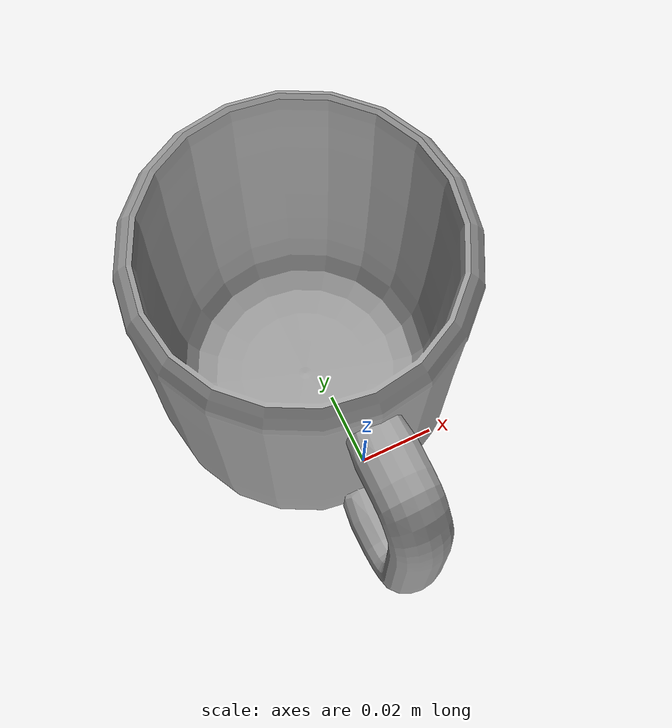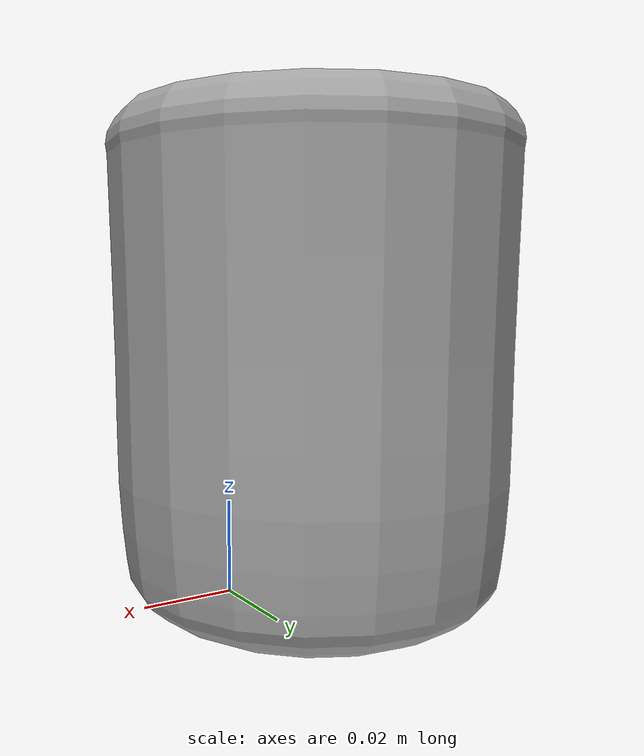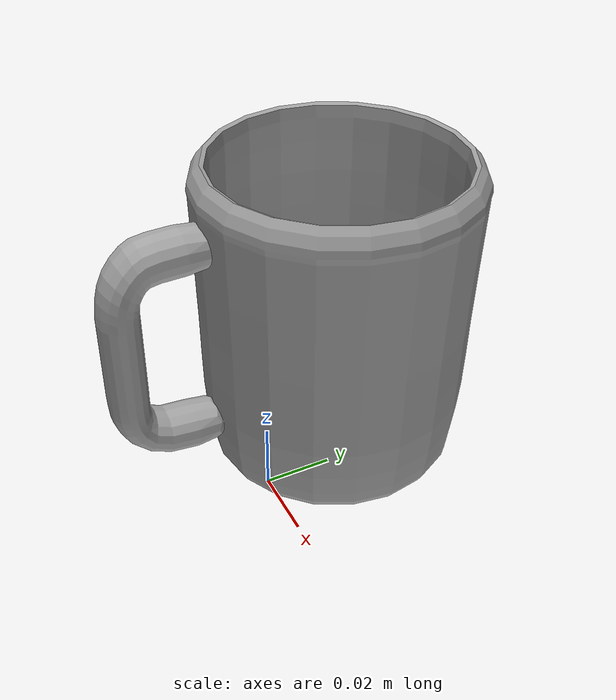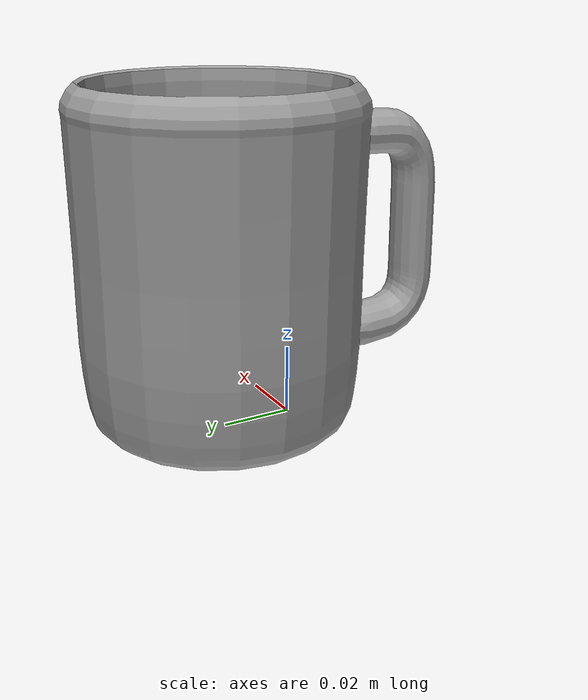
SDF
<?xml version="1.0" ?>
<sdf version="1.0">
  <model name="mug">
    <static>true</static>
    <link name="body">
      <visual name="visual">
        <geometry>
          <mesh><uri>model://mug/model.dae</uri></mesh>
        </geometry>
      </visual>
    </link>
  </model>
</sdf>
